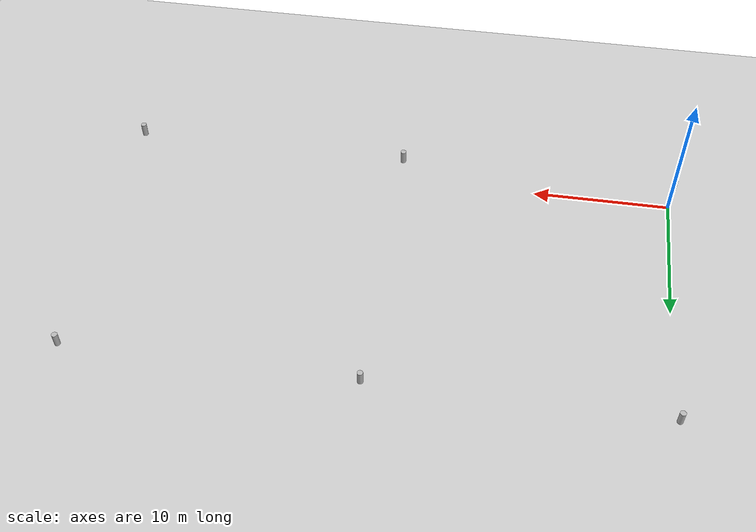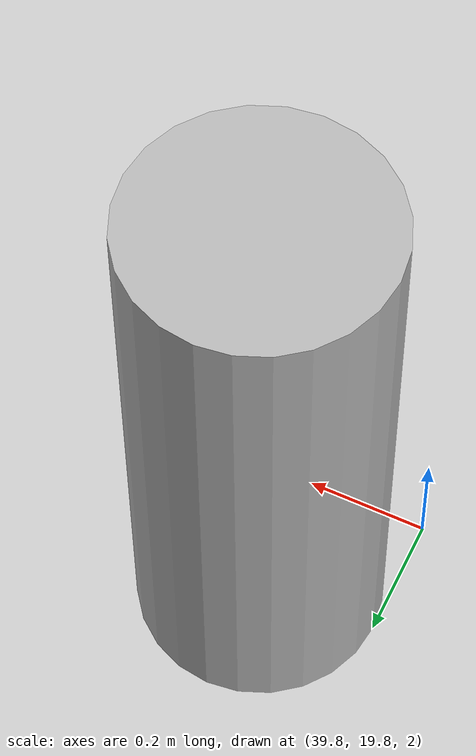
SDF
<?xml version="1.0" ?>
<sdf version="1.5">
  <world name="Scenario 1">
    <include>
      <uri>model://ground_plane</uri>
    </include>
    <include>
      <uri>model://sun</uri>
    </include>
    <include>
      <uri>model://reflector_1</uri>
      <name>reflector</name>
      <pose>40 20 0 0 0 0</pose>
    </include>
    <include>
      <uri>model://reflector_1</uri>
      <name>reflector</name>
      <pose>40 0 0 0 0 0</pose>
    </include>
    <include>
      <uri>model://reflector_1</uri>
      <name>reflector</name>
      <pose>20 20 0 0 0 0</pose>
    </include>
    <include>
      <uri>model://reflector_1</uri>
      <name>reflector</name>
      <pose>20 0 0 0 0 0</pose>
    </include>
    <include>
      <uri>model://reflector_1</uri>
      <name>reflector</name>
      <pose>0 20 0 0 0 0</pose>
    </include>
    <include>
      <uri>model://reflector_1</uri>
      <name>reflector</name>
      <pose>0 0 0 0 0 0</pose>
    </include>
  </world>
</sdf>

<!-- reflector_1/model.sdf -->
<sdf version="1.6">
  <model name="reflector_1">
    <static>true</static>
    <link name="link">
      <pose>0 0 2.5 0 0 0</pose>
      <collision name="collision">
        <laser_retro>200</laser_retro>
        <geometry>
          <cylinder>
            <radius>0.2</radius>
            <length>1</length>
          </cylinder>
        </geometry>
      </collision>

      <visual name="visual">
        <geometry>
          <cylinder>
            <radius>0.2</radius>
            <length>1</length>
          </cylinder>
        </geometry>
      </visual>
    </link>
  </model>
</sdf>
